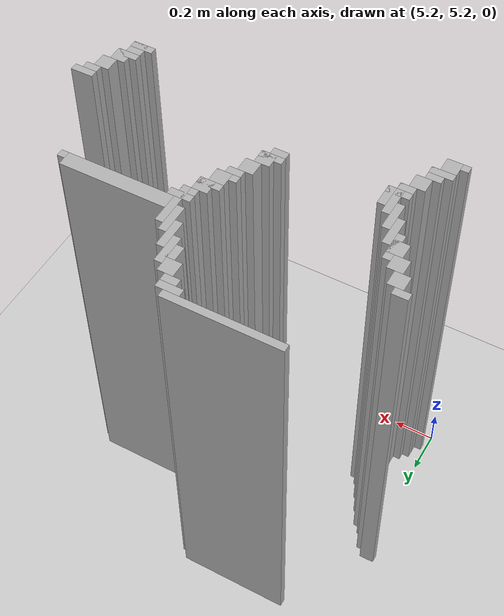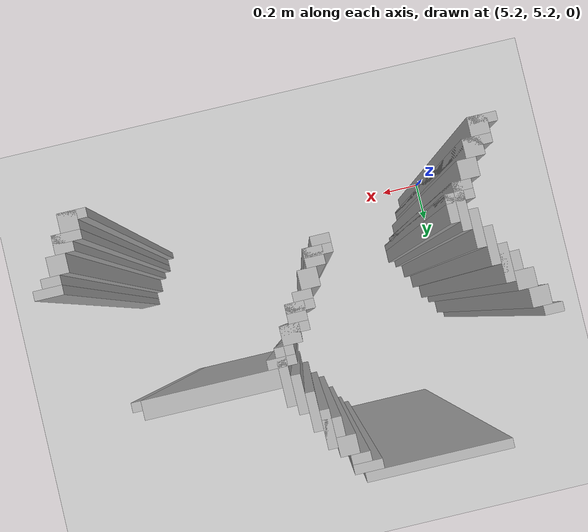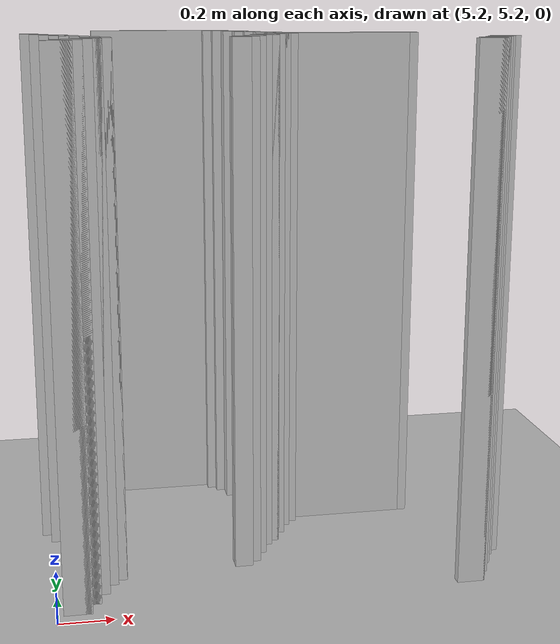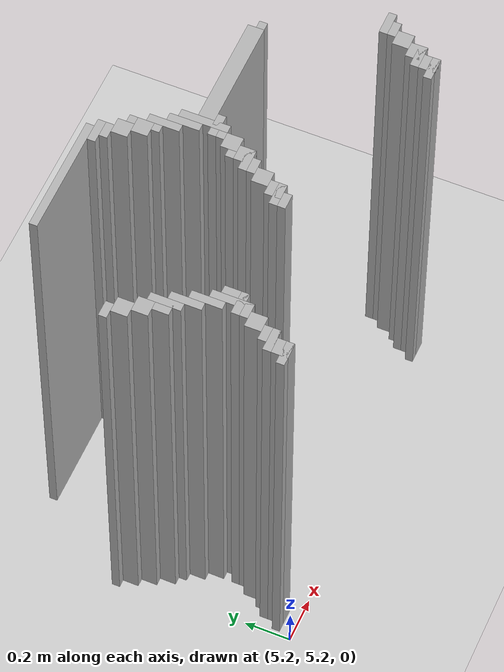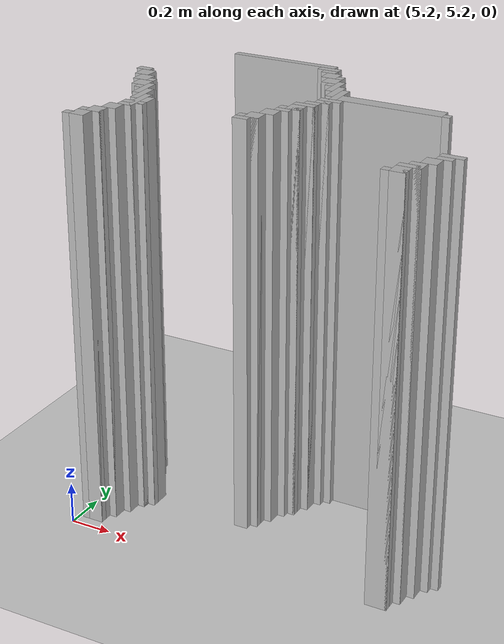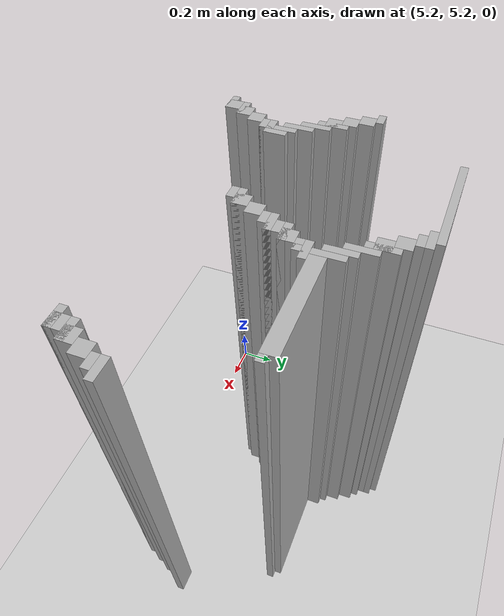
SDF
<sdf version="1.6">
 <world name="slam_world">
  <model name="ground_plane">
   <static>true</static>
   <link name="link">
    <collision name="collision">
     <geometry><plane><normal>0 0 1</normal><size>100 100</size></plane></geometry>
    </collision>
    <visual name="visual">
     <geometry><plane><normal>0 0 1</normal><size>100 100</size></plane></geometry>
     <material>
      <ambient>0.8 0.8 0.8 1</ambient>
      <diffuse>0.8 0.8 0.8 1</diffuse>
      <specular>0.8 0.8 0.8 1</specular>
     </material>
    </visual>
   </link>
  </model>
  <model name="wall_3614">
   <static>true</static>
   <pose>5.690255220417633 6.386310904872389 1.0 0 0 0</pose>
   <link name="link">
    <collision name="collision">
     <geometry><box><size>0.5220417633410672 0.03480278422273782 2.0</size></box></geometry>
    </collision>
    <visual name="visual">
     <geometry><box><size>0.5220417633410672 0.03480278422273782 2.0</size></box></geometry>
     <material><ambient>0.5 0.5 0.5 1</ambient><diffuse>0.7 0.7 0.7 1</diffuse></material>
    </visual>
   </link>
  </model>
  <model name="wall_3625">
   <static>true</static>
   <pose>5.933874709976798 6.351508120649652 1.0 0 0 0</pose>
   <link name="link">
    <collision name="collision">
     <geometry><box><size>0.10440835266821345 0.03480278422273782 2.0</size></box></geometry>
    </collision>
    <visual name="visual">
     <geometry><box><size>0.10440835266821345 0.03480278422273782 2.0</size></box></geometry>
     <material><ambient>0.5 0.5 0.5 1</ambient><diffuse>0.7 0.7 0.7 1</diffuse></material>
    </visual>
   </link>
  </model>
  <model name="wall_3635">
   <static>true</static>
   <pose>5.951276102088166 6.316705336426914 1.0 0 0 0</pose>
   <link name="link">
    <collision name="collision">
     <geometry><box><size>0.06960556844547564 0.03480278422273782 2.0</size></box></geometry>
    </collision>
    <visual name="visual">
     <geometry><box><size>0.06960556844547564 0.03480278422273782 2.0</size></box></geometry>
     <material><ambient>0.5 0.5 0.5 1</ambient><diffuse>0.7 0.7 0.7 1</diffuse></material>
    </visual>
   </link>
  </model>
  <model name="wall_3647">
   <static>true</static>
   <pose>5.986078886310905 6.2645011600928076 1.0 0 0 0</pose>
   <link name="link">
    <collision name="collision">
     <geometry><box><size>0.06960556844547564 0.06960556844547564 2.0</size></box></geometry>
    </collision>
    <visual name="visual">
     <geometry><box><size>0.06960556844547564 0.06960556844547564 2.0</size></box></geometry>
     <material><ambient>0.5 0.5 0.5 1</ambient><diffuse>0.7 0.7 0.7 1</diffuse></material>
    </visual>
   </link>
  </model>
  <model name="wall_3660">
   <static>true</static>
   <pose>6.038283062645012 6.194895591647332 1.0 0 0 0</pose>
   <link name="link">
    <collision name="collision">
     <geometry><box><size>0.03480278422273782 0.13921113689095127 2.0</size></box></geometry>
    </collision>
    <visual name="visual">
     <geometry><box><size>0.03480278422273782 0.13921113689095127 2.0</size></box></geometry>
     <material><ambient>0.5 0.5 0.5 1</ambient><diffuse>0.7 0.7 0.7 1</diffuse></material>
    </visual>
   </link>
  </model>
  <model name="wall_3673">
   <static>true</static>
   <pose>6.020881670533642 6.194895591647332 1.0 0 0 0</pose>
   <link name="link">
    <collision name="collision">
     <geometry><box><size>0.06960556844547564 0.06960556844547564 2.0</size></box></geometry>
    </collision>
    <visual name="visual">
     <geometry><box><size>0.06960556844547564 0.06960556844547564 2.0</size></box></geometry>
     <material><ambient>0.5 0.5 0.5 1</ambient><diffuse>0.7 0.7 0.7 1</diffuse></material>
    </visual>
   </link>
  </model>
  <model name="wall_3686">
   <static>true</static>
   <pose>6.073085846867749 6.125290023201856 1.0 0 0 0</pose>
   <link name="link">
    <collision name="collision">
     <geometry><box><size>0.03480278422273782 0.13921113689095127 2.0</size></box></geometry>
    </collision>
    <visual name="visual">
     <geometry><box><size>0.03480278422273782 0.13921113689095127 2.0</size></box></geometry>
     <material><ambient>0.5 0.5 0.5 1</ambient><diffuse>0.7 0.7 0.7 1</diffuse></material>
    </visual>
   </link>
  </model>
  <model name="wall_3704">
   <static>true</static>
   <pose>6.107888631090487 6.05568445475638 1.0 0 0 0</pose>
   <link name="link">
    <collision name="collision">
     <geometry><box><size>0.03480278422273782 0.13921113689095127 2.0</size></box></geometry>
    </collision>
    <visual name="visual">
     <geometry><box><size>0.03480278422273782 0.13921113689095127 2.0</size></box></geometry>
     <material><ambient>0.5 0.5 0.5 1</ambient><diffuse>0.7 0.7 0.7 1</diffuse></material>
    </visual>
   </link>
  </model>
  <model name="wall_3717">
   <static>true</static>
   <pose>6.142691415313225 5.986078886310905 1.0 0 0 0</pose>
   <link name="link">
    <collision name="collision">
     <geometry><box><size>0.03480278422273782 0.2088167053364269 2.0</size></box></geometry>
    </collision>
    <visual name="visual">
     <geometry><box><size>0.03480278422273782 0.2088167053364269 2.0</size></box></geometry>
     <material><ambient>0.5 0.5 0.5 1</ambient><diffuse>0.7 0.7 0.7 1</diffuse></material>
    </visual>
   </link>
  </model>
  <model name="wall_3735">
   <static>true</static>
   <pose>6.403712296983758 5.986078886310905 1.0 0 0 0</pose>
   <link name="link">
    <collision name="collision">
     <geometry><box><size>0.4872389791183295 0.06960556844547564 2.0</size></box></geometry>
    </collision>
    <visual name="visual">
     <geometry><box><size>0.4872389791183295 0.06960556844547564 2.0</size></box></geometry>
     <material><ambient>0.5 0.5 0.5 1</ambient><diffuse>0.7 0.7 0.7 1</diffuse></material>
    </visual>
   </link>
  </model>
  <model name="wall_3745">
   <static>true</static>
   <pose>5.185614849187935 5.968677494199536 1.0 0 0 0</pose>
   <link name="link">
    <collision name="collision">
     <geometry><box><size>0.06960556844547564 0.03480278422273782 2.0</size></box></geometry>
    </collision>
    <visual name="visual">
     <geometry><box><size>0.06960556844547564 0.03480278422273782 2.0</size></box></geometry>
     <material><ambient>0.5 0.5 0.5 1</ambient><diffuse>0.7 0.7 0.7 1</diffuse></material>
    </visual>
   </link>
  </model>
  <model name="wall_3746">
   <static>true</static>
   <pose>6.664733178654292 5.968677494199536 1.0 0 0 0</pose>
   <link name="link">
    <collision name="collision">
     <geometry><box><size>0.03480278422273782 0.03480278422273782 2.0</size></box></geometry>
    </collision>
    <visual name="visual">
     <geometry><box><size>0.03480278422273782 0.03480278422273782 2.0</size></box></geometry>
     <material><ambient>0.5 0.5 0.5 1</ambient><diffuse>0.7 0.7 0.7 1</diffuse></material>
    </visual>
   </link>
  </model>
  <model name="wall_3757">
   <static>true</static>
   <pose>5.220417633410673 5.916473317865429 1.0 0 0 0</pose>
   <link name="link">
    <collision name="collision">
     <geometry><box><size>0.06960556844547564 0.06960556844547564 2.0</size></box></geometry>
    </collision>
    <visual name="visual">
     <geometry><box><size>0.06960556844547564 0.06960556844547564 2.0</size></box></geometry>
     <material><ambient>0.5 0.5 0.5 1</ambient><diffuse>0.7 0.7 0.7 1</diffuse></material>
    </visual>
   </link>
  </model>
  <model name="wall_3758">
   <static>true</static>
   <pose>6.142691415313225 5.933874709976798 1.0 0 0 0</pose>
   <link name="link">
    <collision name="collision">
     <geometry><box><size>0.10440835266821345 0.03480278422273782 2.0</size></box></geometry>
    </collision>
    <visual name="visual">
     <geometry><box><size>0.10440835266821345 0.03480278422273782 2.0</size></box></geometry>
     <material><ambient>0.5 0.5 0.5 1</ambient><diffuse>0.7 0.7 0.7 1</diffuse></material>
    </visual>
   </link>
  </model>
  <model name="wall_3767">
   <static>true</static>
   <pose>6.125290023201856 5.89907192575406 1.0 0 0 0</pose>
   <link name="link">
    <collision name="collision">
     <geometry><box><size>0.06960556844547564 0.03480278422273782 2.0</size></box></geometry>
    </collision>
    <visual name="visual">
     <geometry><box><size>0.06960556844547564 0.03480278422273782 2.0</size></box></geometry>
     <material><ambient>0.5 0.5 0.5 1</ambient><diffuse>0.7 0.7 0.7 1</diffuse></material>
    </visual>
   </link>
  </model>
  <model name="wall_3776">
   <static>true</static>
   <pose>5.25522041763341 5.846867749419953 1.0 0 0 0</pose>
   <link name="link">
    <collision name="collision">
     <geometry><box><size>0.06960556844547564 0.06960556844547564 2.0</size></box></geometry>
    </collision>
    <visual name="visual">
     <geometry><box><size>0.06960556844547564 0.06960556844547564 2.0</size></box></geometry>
     <material><ambient>0.5 0.5 0.5 1</ambient><diffuse>0.7 0.7 0.7 1</diffuse></material>
    </visual>
   </link>
  </model>
  <model name="wall_3777">
   <static>true</static>
   <pose>6.090487238979118 5.846867749419953 1.0 0 0 0</pose>
   <link name="link">
    <collision name="collision">
     <geometry><box><size>0.06960556844547564 0.06960556844547564 2.0</size></box></geometry>
    </collision>
    <visual name="visual">
     <geometry><box><size>0.06960556844547564 0.06960556844547564 2.0</size></box></geometry>
     <material><ambient>0.5 0.5 0.5 1</ambient><diffuse>0.7 0.7 0.7 1</diffuse></material>
    </visual>
   </link>
  </model>
  <model name="wall_3789">
   <static>true</static>
   <pose>5.307424593967517 5.7772621809744775 1.0 0 0 0</pose>
   <link name="link">
    <collision name="collision">
     <geometry><box><size>0.03480278422273782 0.13921113689095127 2.0</size></box></geometry>
    </collision>
    <visual name="visual">
     <geometry><box><size>0.03480278422273782 0.13921113689095127 2.0</size></box></geometry>
     <material><ambient>0.5 0.5 0.5 1</ambient><diffuse>0.7 0.7 0.7 1</diffuse></material>
    </visual>
   </link>
  </model>
  <model name="wall_3790">
   <static>true</static>
   <pose>6.073085846867749 5.8294663573085845 1.0 0 0 0</pose>
   <link name="link">
    <collision name="collision">
     <geometry><box><size>0.10440835266821345 0.03480278422273782 2.0</size></box></geometry>
    </collision>
    <visual name="visual">
     <geometry><box><size>0.10440835266821345 0.03480278422273782 2.0</size></box></geometry>
     <material><ambient>0.5 0.5 0.5 1</ambient><diffuse>0.7 0.7 0.7 1</diffuse></material>
    </visual>
   </link>
  </model>
  <model name="wall_3802">
   <static>true</static>
   <pose>5.290023201856148 5.7772621809744775 1.0 0 0 0</pose>
   <link name="link">
    <collision name="collision">
     <geometry><box><size>0.06960556844547564 0.06960556844547564 2.0</size></box></geometry>
    </collision>
    <visual name="visual">
     <geometry><box><size>0.06960556844547564 0.06960556844547564 2.0</size></box></geometry>
     <material><ambient>0.5 0.5 0.5 1</ambient><diffuse>0.7 0.7 0.7 1</diffuse></material>
    </visual>
   </link>
  </model>
  <model name="wall_3803">
   <static>true</static>
   <pose>6.05568445475638 5.7772621809744775 1.0 0 0 0</pose>
   <link name="link">
    <collision name="collision">
     <geometry><box><size>0.06960556844547564 0.06960556844547564 2.0</size></box></geometry>
    </collision>
    <visual name="visual">
     <geometry><box><size>0.06960556844547564 0.06960556844547564 2.0</size></box></geometry>
     <material><ambient>0.5 0.5 0.5 1</ambient><diffuse>0.7 0.7 0.7 1</diffuse></material>
    </visual>
   </link>
  </model>
  <model name="wall_3814">
   <static>true</static>
   <pose>5.342227378190255 5.707656612529002 1.0 0 0 0</pose>
   <link name="link">
    <collision name="collision">
     <geometry><box><size>0.03480278422273782 0.13921113689095127 2.0</size></box></geometry>
    </collision>
    <visual name="visual">
     <geometry><box><size>0.03480278422273782 0.13921113689095127 2.0</size></box></geometry>
     <material><ambient>0.5 0.5 0.5 1</ambient><diffuse>0.7 0.7 0.7 1</diffuse></material>
    </visual>
   </link>
  </model>
  <model name="wall_3815">
   <static>true</static>
   <pose>6.038283062645012 5.759860788863109 1.0 0 0 0</pose>
   <link name="link">
    <collision name="collision">
     <geometry><box><size>0.10440835266821345 0.03480278422273782 2.0</size></box></geometry>
    </collision>
    <visual name="visual">
     <geometry><box><size>0.10440835266821345 0.03480278422273782 2.0</size></box></geometry>
     <material><ambient>0.5 0.5 0.5 1</ambient><diffuse>0.7 0.7 0.7 1</diffuse></material>
    </visual>
   </link>
  </model>
  <model name="wall_3825">
   <static>true</static>
   <pose>6.020881670533642 5.725058004640371 1.0 0 0 0</pose>
   <link name="link">
    <collision name="collision">
     <geometry><box><size>0.06960556844547564 0.03480278422273782 2.0</size></box></geometry>
    </collision>
    <visual name="visual">
     <geometry><box><size>0.06960556844547564 0.03480278422273782 2.0</size></box></geometry>
     <material><ambient>0.5 0.5 0.5 1</ambient><diffuse>0.7 0.7 0.7 1</diffuse></material>
    </visual>
   </link>
  </model>
  <model name="wall_3833">
   <static>true</static>
   <pose>5.377030162412993 5.638051044083526 1.0 0 0 0</pose>
   <link name="link">
    <collision name="collision">
     <geometry><box><size>0.03480278422273782 0.13921113689095127 2.0</size></box></geometry>
    </collision>
    <visual name="visual">
     <geometry><box><size>0.03480278422273782 0.13921113689095127 2.0</size></box></geometry>
     <material><ambient>0.5 0.5 0.5 1</ambient><diffuse>0.7 0.7 0.7 1</diffuse></material>
    </visual>
   </link>
  </model>
  <model name="wall_3834">
   <static>true</static>
   <pose>5.986078886310905 5.672853828306264 1.0 0 0 0</pose>
   <link name="link">
    <collision name="collision">
     <geometry><box><size>0.06960556844547564 0.06960556844547564 2.0</size></box></geometry>
    </collision>
    <visual name="visual">
     <geometry><box><size>0.06960556844547564 0.06960556844547564 2.0</size></box></geometry>
     <material><ambient>0.5 0.5 0.5 1</ambient><diffuse>0.7 0.7 0.7 1</diffuse></material>
    </visual>
   </link>
  </model>
  <model name="wall_3846">
   <static>true</static>
   <pose>5.41183294663573 5.551044083526682 1.0 0 0 0</pose>
   <link name="link">
    <collision name="collision">
     <geometry><box><size>0.03480278422273782 0.17401392111368907 2.0</size></box></geometry>
    </collision>
    <visual name="visual">
     <geometry><box><size>0.03480278422273782 0.17401392111368907 2.0</size></box></geometry>
     <material><ambient>0.5 0.5 0.5 1</ambient><diffuse>0.7 0.7 0.7 1</diffuse></material>
    </visual>
   </link>
  </model>
  <model name="wall_3847">
   <static>true</static>
   <pose>5.951276102088166 5.603248259860789 1.0 0 0 0</pose>
   <link name="link">
    <collision name="collision">
     <geometry><box><size>0.06960556844547564 0.06960556844547564 2.0</size></box></geometry>
    </collision>
    <visual name="visual">
     <geometry><box><size>0.06960556844547564 0.06960556844547564 2.0</size></box></geometry>
     <material><ambient>0.5 0.5 0.5 1</ambient><diffuse>0.7 0.7 0.7 1</diffuse></material>
    </visual>
   </link>
  </model>
  <model name="wall_3859">
   <static>true</static>
   <pose>5.4466357308584685 5.551044083526682 1.0 0 0 0</pose>
   <link name="link">
    <collision name="collision">
     <geometry><box><size>0.03480278422273782 0.10440835266821345 2.0</size></box></geometry>
    </collision>
    <visual name="visual">
     <geometry><box><size>0.03480278422273782 0.10440835266821345 2.0</size></box></geometry>
     <material><ambient>0.5 0.5 0.5 1</ambient><diffuse>0.7 0.7 0.7 1</diffuse></material>
    </visual>
   </link>
  </model>
  <model name="wall_3860">
   <static>true</static>
   <pose>5.933874709976798 5.58584686774942 1.0 0 0 0</pose>
   <link name="link">
    <collision name="collision">
     <geometry><box><size>0.10440835266821345 0.03480278422273782 2.0</size></box></geometry>
    </collision>
    <visual name="visual">
     <geometry><box><size>0.10440835266821345 0.03480278422273782 2.0</size></box></geometry>
     <material><ambient>0.5 0.5 0.5 1</ambient><diffuse>0.7 0.7 0.7 1</diffuse></material>
    </visual>
   </link>
  </model>
  <model name="wall_3872">
   <static>true</static>
   <pose>5.916473317865429 5.551044083526682 1.0 0 0 0</pose>
   <link name="link">
    <collision name="collision">
     <geometry><box><size>0.06960556844547564 0.03480278422273782 2.0</size></box></geometry>
    </collision>
    <visual name="visual">
     <geometry><box><size>0.06960556844547564 0.03480278422273782 2.0</size></box></geometry>
     <material><ambient>0.5 0.5 0.5 1</ambient><diffuse>0.7 0.7 0.7 1</diffuse></material>
    </visual>
   </link>
  </model>
  <model name="wall_3883">
   <static>true</static>
   <pose>5.41183294663573 5.516241299303944 1.0 0 0 0</pose>
   <link name="link">
    <collision name="collision">
     <geometry><box><size>0.10440835266821345 0.03480278422273782 2.0</size></box></geometry>
    </collision>
    <visual name="visual">
     <geometry><box><size>0.10440835266821345 0.03480278422273782 2.0</size></box></geometry>
     <material><ambient>0.5 0.5 0.5 1</ambient><diffuse>0.7 0.7 0.7 1</diffuse></material>
    </visual>
   </link>
  </model>
  <model name="wall_3884">
   <static>true</static>
   <pose>6.8735498839907185 5.516241299303944 1.0 0 0 0</pose>
   <link name="link">
    <collision name="collision">
     <geometry><box><size>0.10440835266821345 0.03480278422273782 2.0</size></box></geometry>
    </collision>
    <visual name="visual">
     <geometry><box><size>0.10440835266821345 0.03480278422273782 2.0</size></box></geometry>
     <material><ambient>0.5 0.5 0.5 1</ambient><diffuse>0.7 0.7 0.7 1</diffuse></material>
    </visual>
   </link>
  </model>
  <model name="wall_3898">
   <static>true</static>
   <pose>5.3944315545243615 5.481438515081206 1.0 0 0 0</pose>
   <link name="link">
    <collision name="collision">
     <geometry><box><size>0.06960556844547564 0.03480278422273782 2.0</size></box></geometry>
    </collision>
    <visual name="visual">
     <geometry><box><size>0.06960556844547564 0.03480278422273782 2.0</size></box></geometry>
     <material><ambient>0.5 0.5 0.5 1</ambient><diffuse>0.7 0.7 0.7 1</diffuse></material>
    </visual>
   </link>
  </model>
  <model name="wall_3899">
   <static>true</static>
   <pose>6.85614849187935 5.481438515081206 1.0 0 0 0</pose>
   <link name="link">
    <collision name="collision">
     <geometry><box><size>0.06960556844547564 0.03480278422273782 2.0</size></box></geometry>
    </collision>
    <visual name="visual">
     <geometry><box><size>0.06960556844547564 0.03480278422273782 2.0</size></box></geometry>
     <material><ambient>0.5 0.5 0.5 1</ambient><diffuse>0.7 0.7 0.7 1</diffuse></material>
    </visual>
   </link>
  </model>
  <model name="wall_3911">
   <static>true</static>
   <pose>5.359628770301624 5.4292343387471 1.0 0 0 0</pose>
   <link name="link">
    <collision name="collision">
     <geometry><box><size>0.06960556844547564 0.06960556844547564 2.0</size></box></geometry>
    </collision>
    <visual name="visual">
     <geometry><box><size>0.06960556844547564 0.06960556844547564 2.0</size></box></geometry>
     <material><ambient>0.5 0.5 0.5 1</ambient><diffuse>0.7 0.7 0.7 1</diffuse></material>
    </visual>
   </link>
  </model>
  <model name="wall_3912">
   <static>true</static>
   <pose>6.821345707656612 5.4292343387471 1.0 0 0 0</pose>
   <link name="link">
    <collision name="collision">
     <geometry><box><size>0.06960556844547564 0.06960556844547564 2.0</size></box></geometry>
    </collision>
    <visual name="visual">
     <geometry><box><size>0.06960556844547564 0.06960556844547564 2.0</size></box></geometry>
     <material><ambient>0.5 0.5 0.5 1</ambient><diffuse>0.7 0.7 0.7 1</diffuse></material>
    </visual>
   </link>
  </model>
  <model name="wall_3924">
   <static>true</static>
   <pose>5.324825986078886 5.359628770301624 1.0 0 0 0</pose>
   <link name="link">
    <collision name="collision">
     <geometry><box><size>0.06960556844547564 0.06960556844547564 2.0</size></box></geometry>
    </collision>
    <visual name="visual">
     <geometry><box><size>0.06960556844547564 0.06960556844547564 2.0</size></box></geometry>
     <material><ambient>0.5 0.5 0.5 1</ambient><diffuse>0.7 0.7 0.7 1</diffuse></material>
    </visual>
   </link>
  </model>
  <model name="wall_3925">
   <static>true</static>
   <pose>6.786542923433874 5.359628770301624 1.0 0 0 0</pose>
   <link name="link">
    <collision name="collision">
     <geometry><box><size>0.06960556844547564 0.06960556844547564 2.0</size></box></geometry>
    </collision>
    <visual name="visual">
     <geometry><box><size>0.06960556844547564 0.06960556844547564 2.0</size></box></geometry>
     <material><ambient>0.5 0.5 0.5 1</ambient><diffuse>0.7 0.7 0.7 1</diffuse></material>
    </visual>
   </link>
  </model>
  <model name="wall_3937">
   <static>true</static>
   <pose>5.307424593967517 5.342227378190255 1.0 0 0 0</pose>
   <link name="link">
    <collision name="collision">
     <geometry><box><size>0.10440835266821345 0.03480278422273782 2.0</size></box></geometry>
    </collision>
    <visual name="visual">
     <geometry><box><size>0.10440835266821345 0.03480278422273782 2.0</size></box></geometry>
     <material><ambient>0.5 0.5 0.5 1</ambient><diffuse>0.7 0.7 0.7 1</diffuse></material>
    </visual>
   </link>
  </model>
  <model name="wall_3938">
   <static>true</static>
   <pose>6.769141531322505 5.342227378190255 1.0 0 0 0</pose>
   <link name="link">
    <collision name="collision">
     <geometry><box><size>0.10440835266821345 0.03480278422273782 2.0</size></box></geometry>
    </collision>
    <visual name="visual">
     <geometry><box><size>0.10440835266821345 0.03480278422273782 2.0</size></box></geometry>
     <material><ambient>0.5 0.5 0.5 1</ambient><diffuse>0.7 0.7 0.7 1</diffuse></material>
    </visual>
   </link>
  </model>
  <model name="wall_3948">
   <static>true</static>
   <pose>5.290023201856148 5.290023201856148 1.0 0 0 0</pose>
   <link name="link">
    <collision name="collision">
     <geometry><box><size>0.06960556844547564 0.06960556844547564 2.0</size></box></geometry>
    </collision>
    <visual name="visual">
     <geometry><box><size>0.06960556844547564 0.06960556844547564 2.0</size></box></geometry>
     <material><ambient>0.5 0.5 0.5 1</ambient><diffuse>0.7 0.7 0.7 1</diffuse></material>
    </visual>
   </link>
  </model>
  <model name="wall_3949">
   <static>true</static>
   <pose>6.751740139211137 5.290023201856148 1.0 0 0 0</pose>
   <link name="link">
    <collision name="collision">
     <geometry><box><size>0.06960556844547564 0.06960556844547564 2.0</size></box></geometry>
    </collision>
    <visual name="visual">
     <geometry><box><size>0.06960556844547564 0.06960556844547564 2.0</size></box></geometry>
     <material><ambient>0.5 0.5 0.5 1</ambient><diffuse>0.7 0.7 0.7 1</diffuse></material>
    </visual>
   </link>
  </model>
  <model name="wall_3958">
   <static>true</static>
   <pose>5.27262180974478 5.27262180974478 1.0 0 0 0</pose>
   <link name="link">
    <collision name="collision">
     <geometry><box><size>0.10440835266821345 0.03480278422273782 2.0</size></box></geometry>
    </collision>
    <visual name="visual">
     <geometry><box><size>0.10440835266821345 0.03480278422273782 2.0</size></box></geometry>
     <material><ambient>0.5 0.5 0.5 1</ambient><diffuse>0.7 0.7 0.7 1</diffuse></material>
    </visual>
   </link>
  </model>
  <model name="wall_3959">
   <static>true</static>
   <pose>6.734338747099768 5.27262180974478 1.0 0 0 0</pose>
   <link name="link">
    <collision name="collision">
     <geometry><box><size>0.10440835266821345 0.03480278422273782 2.0</size></box></geometry>
    </collision>
    <visual name="visual">
     <geometry><box><size>0.10440835266821345 0.03480278422273782 2.0</size></box></geometry>
     <material><ambient>0.5 0.5 0.5 1</ambient><diffuse>0.7 0.7 0.7 1</diffuse></material>
    </visual>
   </link>
  </model>
 </world>
</sdf>
